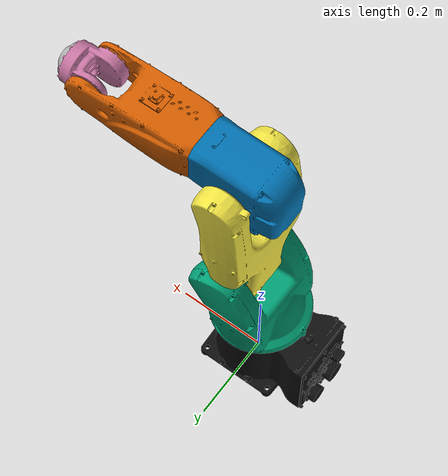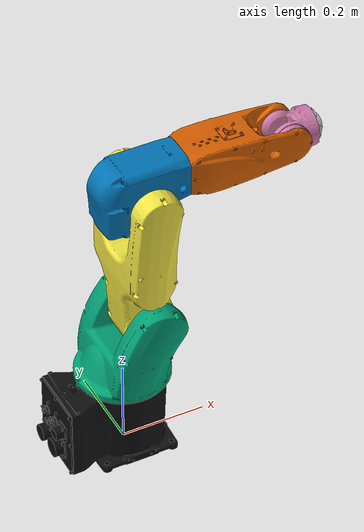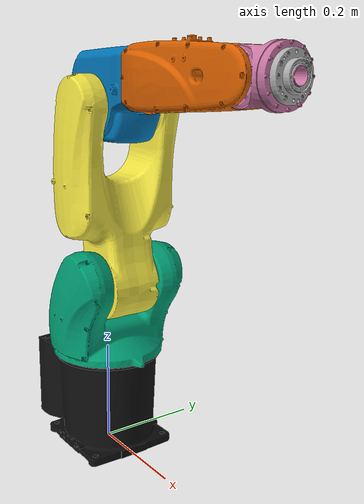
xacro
<?xml version="1.0"?>
<robot name="mz07" xmlns:xacro="http://ros.org/wiki/xacro">
  <!-- Include -->
  <xacro:include filename="$(find nachi_description)/urdf/common.xacro" />
  <xacro:include filename="$(find nachi_description)/urdf/materials.xacro" />
  <xacro:include filename="$(find nachi_description)/urdf/mz07/body.urdf.xacro" />
  <xacro:include filename="$(find nachi_description)/urdf/mz07/body.gazebo.xacro"/>
  <xacro:include filename="$(find nachi_description)/urdf/mz07/body.transmission.xacro"/>

  <!-- Radius Limits -->
  <xacro:property name="J1_upper_limit" value="${170*M_PI/180.0}"/>
  <xacro:property name="J1_lower_limit" value="-${J1_upper_limit}"/>

  <xacro:property name="J2_upper_limit" value="${135*M_PI/180.0}"/>
  <xacro:property name="J2_lower_limit" value="${-80*M_PI/180.0}"/>

  <xacro:property name="J3_upper_limit" value="${46*M_PI/180.0}"/>
  <xacro:property name="J3_lower_limit" value="${-180*M_PI/180.0}"/>

  <xacro:property name="J4_upper_limit" value="${190*M_PI/180.0}"/>
  <xacro:property name="J4_lower_limit" value="-${J4_upper_limit}"/>

  <xacro:property name="J5_upper_limit" value="${120*M_PI/180.0}"/>
  <xacro:property name="J5_lower_limit" value="-${J5_upper_limit}"/>

  <xacro:property name="J6_upper_limit" value="${360*M_PI/180.0}"/>
  <xacro:property name="J6_lower_limit" value="-${J6_upper_limit}"/>

  <!-- Velocity Limits -->
  <xacro:property name="J1_velocity_limit" value="${450.0*M_PI/180.0}"/>
  <xacro:property name="J2_velocity_limit" value="${380.0*M_PI/180.0}"/>
  <xacro:property name="J3_velocity_limit" value="${520.0*M_PI/180.0}"/>
  <xacro:property name="J4_velocity_limit" value="${550.0*M_PI/180.0}"/>
  <xacro:property name="J5_velocity_limit" value="${550.0*M_PI/180.0}"/>
  <xacro:property name="J6_velocity_limit" value="${1000.0*M_PI/180.0}"/>

  <!-- Link -->
  <link name="world"/>
  <xacro:link_v1 name="base_link" mass="9.522365"
				 ixx="0.144495" ixy="-0.000009" ixz="-0.030760"
				 iyy="0.183352" iyz="-0.000037"
				 izz="0.079873"/>

  <xacro:link_v1 name="link_1" mass="5.616960"
				 ixx="0.087433" ixy="0.000000" ixz="0.013287"
				 iyy="0.073064" iyz="0.000019"
				 izz="0.039829"/>

  <xacro:link_v1 name="link_2" mass="7.350069"
				 ixx="0.299465" ixy="-0.000010" ixz="-0.012735"
				 iyy="0.279554" iyz="0.000053"
				 izz="0.035911"/>

  <xacro:link_v1 name="link_3" mass="3.724767"
				 ixx="0.011733" ixy="0.000043" ixz="0.000461"
				 iyy="0.019531" iyz="0.000024"
				 izz="0.014154"/>

  <xacro:link_v1 name="link_4" mass="3.245188"
				 ixx="0.007141" ixy="0.000562" ixz="0.000255"
				 iyy="0.054197" iyz="0.000024"
				 izz="0.056111"/>

  <xacro:link_v1 name="link_5" mass="0.501938"
         ixx="0.000539" ixy="0.000001" ixz="0.000000"
         iyy="0.000892" iyz="-0.000001"
         izz="0.000962"/>

  <xacro:link_v1 name="link_6" mass="0.038575"
         ixx="0.0005" ixy="0.000000" ixz="0.000000"
         iyy="0.0005" iyz="0.000000"
         izz="0.0005"/>

  <link name="tool0"/>

  <!-- Joint -->
  <joint name="world" type="fixed">
    <parent link="world"/>
    <child link="base_link"/>
  </joint>

  <xacro:joint_v1 joint_name="J1"
                  parent_name="base_link" child_name="link_1"
                  ox="0" oy="0" oz="0.197"
                  roll="0" pitch="0" yaw="0"
                  ax="0" ay="0" az="1"
                  el="30.0"
                  ll="${J1_lower_limit}" ul="${J1_upper_limit}"
                  vl="${J1_velocity_limit}"
                  skp="1" skv="1"
                  sll="${J1_lower_limit}" sul="${J1_upper_limit}"/>

  <xacro:joint_v1 joint_name="J2"
                  parent_name="link_1" child_name="link_2"
                  ox="0.05" oy="0" oz="0.148"
                  roll="0" pitch="0" yaw="0"
                  ax="0" ay="1" az="0"
                  el="30.0"
                  ll="${J2_lower_limit}" ul="${J2_upper_limit}"
                  vl="${J2_velocity_limit}"
                  skp="1" skv="1"
                  sll="${J2_lower_limit}" sul="${J2_upper_limit}"/>

  <xacro:joint_v1 joint_name="J3"
                  parent_name="link_2" child_name="link_3"
                  ox="0" oy="0" oz="0.33"
                  roll="0" pitch="0" yaw="0"
                  ax="0" ay="1" az="0"
                  el="30.0"
                  ll="${J3_lower_limit}" ul="${J3_upper_limit}"
                  vl="${J3_velocity_limit}"
                  skp="1" skv="1"
                  sll="${J3_lower_limit}" sul="${J3_upper_limit}"/>

  <xacro:joint_v1 joint_name="J4"
                  parent_name="link_3" child_name="link_4"
                  ox="0.09" oy="0" oz="0.045"
                  roll="0" pitch="0" yaw="0"
                  ax="1" ay="0" az="0"
                  el="30.0"
                  ll="${J4_lower_limit}" ul="${J4_upper_limit}"
                  vl="${J4_velocity_limit}"
                  skp="1" skv="1"
                  sll="${J4_lower_limit}" sul="${J4_upper_limit}"/>

  <xacro:joint_v1 joint_name="J5"
                  parent_name="link_4" child_name="link_5"
                  ox="0.25" oy="0" oz="0"
                  roll="0" pitch="0" yaw="0"
                  ax="0" ay="1" az="0"
                  el="30.0"
                  ll="${J5_lower_limit}" ul="${J5_upper_limit}"
                  vl="${J5_velocity_limit}"
                  skp="1" skv="1"
                  sll="${J5_lower_limit}" sul="${J5_upper_limit}"/>

  <xacro:joint_v1 joint_name="J6"
                  parent_name="link_5" child_name="link_6"
                  ox="0.063" oy="0" oz="0"
                  roll="0" pitch="0" yaw="0"
                  ax="1" ay="0" az="0"
                  el="30.0"
                  ll="${J6_lower_limit}" ul="${J6_upper_limit}"
                  vl="${J6_velocity_limit}"
                  skp="1" skv="1"
                  sll="${J6_lower_limit}" sul="${J6_upper_limit}"/>

  <joint name="joint_tool0" type="fixed">
    <origin rpy="0 0 0" xyz="0.0195 0 0"/>
    <parent link="link_6"/>
    <child link="tool0"/>
  </joint>

  <!-- transmission -->
  <xacro:simple_jp_trans_v0 name="transmission_1"
  							joint_name="J1" actuator_name="motor_1"
  							reduction="1"/>
  <xacro:simple_jp_trans_v0 name="transmission_2"
  							joint_name="J2" actuator_name="motor_2"
  							reduction="1"/>
  <xacro:simple_jp_trans_v0 name="transmission_3"
  							joint_name="J3" actuator_name="motor_3"
  							reduction="1"/>
  <xacro:simple_jp_trans_v0 name="transmission_4"
  							joint_name="J4" actuator_name="motor_4"
  							reduction="1"/>
  <xacro:simple_jp_trans_v0 name="transmission_5"
  							joint_name="J5" actuator_name="motor_5"
  							reduction="1"/>
  <xacro:simple_jp_trans_v0 name="transmission_6"
  							joint_name="J6" actuator_name="motor_6"
  							reduction="1"/>

  <!-- gazebo -->
  <gazebo>
    <plugin name="gazebo_ros_control" filename="libgazebo_ros_control.so">
      <robotNamespace>/mz07</robotNamespace>
      <robotSimType>gazebo_ros_control/DefaultRobotHWSim</robotSimType>
    </plugin>
  </gazebo>
  <xacro:gazebo_link_v1 name="base_link"/>
  <xacro:gazebo_link_v1 name="link_1"/>
  <xacro:gazebo_link_v1 name="link_2"/>
  <xacro:gazebo_link_v1 name="link_3"/>
  <xacro:gazebo_link_v1 name="link_4"/>
  <xacro:gazebo_link_v1 name="link_5"/>
  <xacro:gazebo_link_v1 name="link_6"/>
</robot>

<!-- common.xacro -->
<robot xmlns:xacro="http://ros.org/wiki/xacro">
  <xacro:property name="M_PI" value="3.14159274"/>
</robot>

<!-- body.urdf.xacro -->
<robot xmlns:xacro="http://ros.org/wiki/xacro">
  <xacro:macro name="link_v1" params="name mass
                                      ixx ixy ixz
                                      iyy iyz izz">
    <link name="${name}">
      <visual>
        <geometry>
          <mesh filename="package://nachi_description/meshes/mz07/visual/${name}.dae"/>
        </geometry>
      </visual>
      <collision>
        <geometry>
          <mesh filename="package://nachi_description/meshes/mz07/collision/${name}.stl"/>
        </geometry>
      </collision>
      <inertial>
        <mass value="${mass}"/>
        <inertia ixx="${ixx}" ixy="${ixy}" ixz="${ixz}" iyy="${iyy}" iyz="${iyz}" izz="${izz}" />
      </inertial>
    </link>
  </xacro:macro>

  <xacro:macro name="joint_v1" params="joint_name
                     parent_name child_name
                                       ox oy oz roll pitch yaw ax ay az
                     el ll ul vl
                     skp skv sll sul">
    <joint name="${joint_name}" type="revolute">
      <origin xyz="${ox} ${oy} ${oz}" rpy="${roll} ${pitch} ${yaw}"/>
      <parent link="${parent_name}"/>
      <child link="${child_name}"/>
      <axis xyz="${ax} ${ay} ${az}"/>
    <dynamics damping="0.7" friction="0.7"/>
      <limit effort="${el}" lower="${ll}" upper="${ul}" velocity="${vl}"/>
    </joint>
  </xacro:macro>
</robot>
